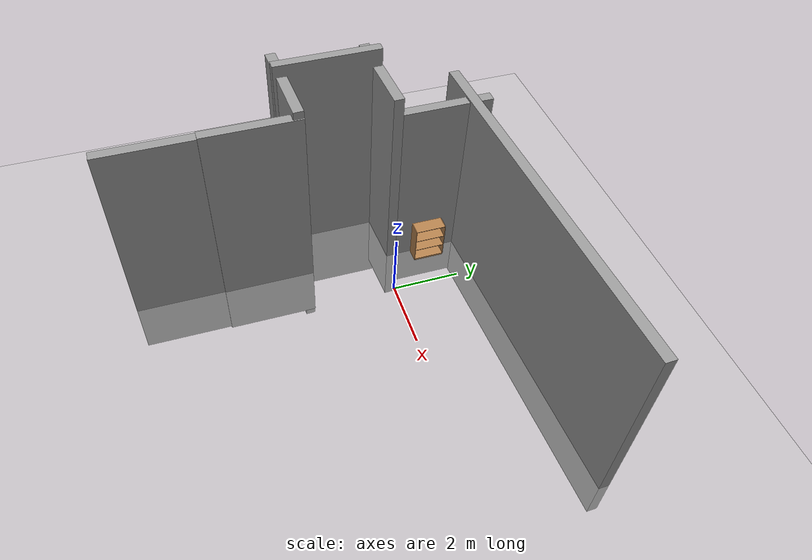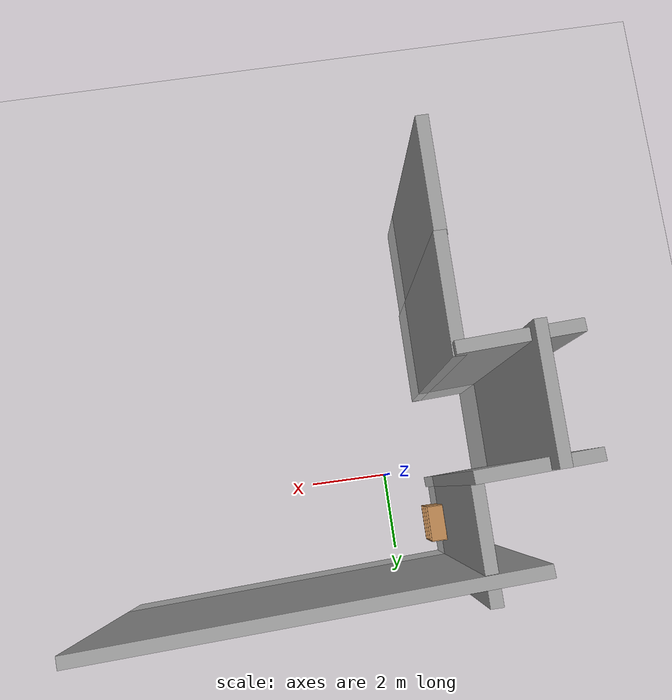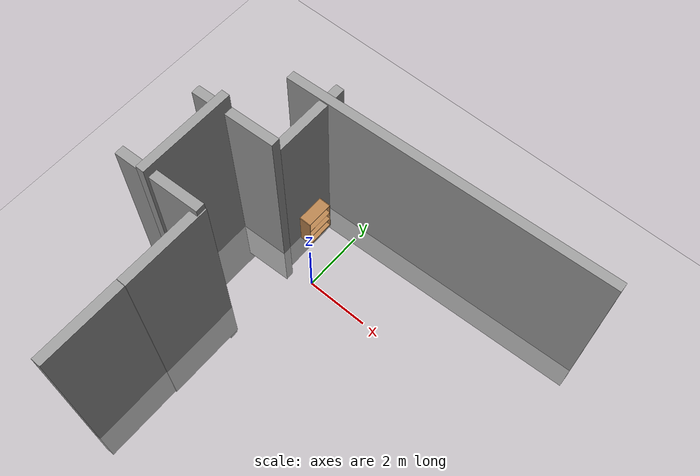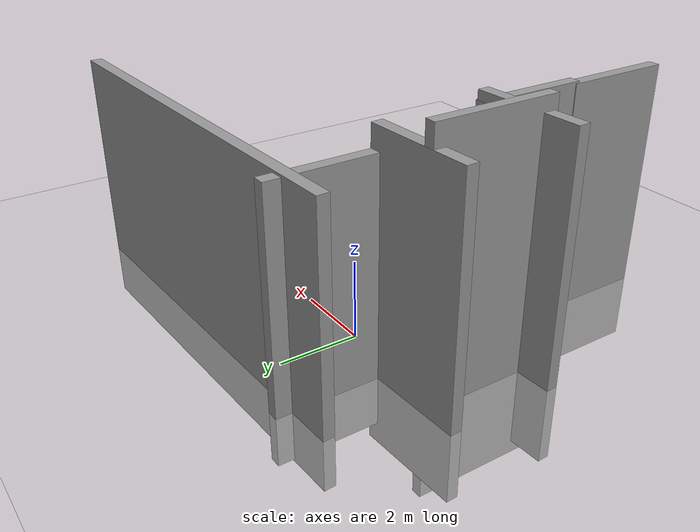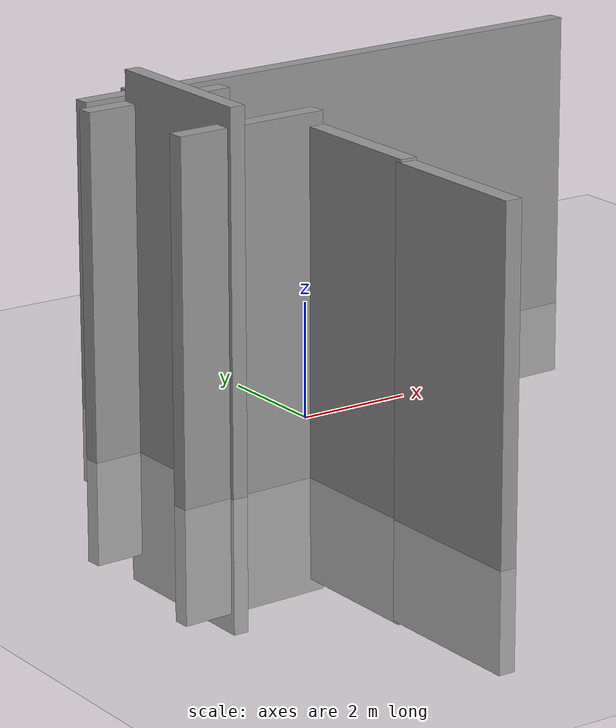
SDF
<sdf version="1.7">
 <world name="default">
  <light name="sun" type="directional">
   <pose>0 0 10 0 -0 0</pose>
   <diffuse>0.8 0.8 0.8 1</diffuse>
   <specular>0.2 0.2 0.2 1</specular>
   <attenuation>
    <range>1000</range>
    <constant>0.9</constant>
    <linear>0.01</linear>
    <quadratic>0.001</quadratic>
   </attenuation>
   <direction>-0.5 0.1 -0.9</direction>
   <spot><inner_angle>0</inner_angle><outer_angle>0</outer_angle><falloff>0</falloff></spot>
  </light>
  <model name="ground_plane">
   <static>1</static>
   <link name="link">
    <collision name="collision">
     <geometry><plane><normal>0 0 1</normal><size>100 100</size></plane></geometry>
     <surface>
      <contact><collide_bitmask>65535</collide_bitmask></contact>
      <friction><ode><mu>100</mu><mu2>50</mu2></ode></friction>
     </surface>
    </collision>
    <visual name="visual">
     <cast_shadows>0</cast_shadows>
     <geometry><plane><normal>0 0 1</normal><size>100 100</size></plane></geometry>
     <material>
      <script><uri>file://media/materials/scripts/gazebo.material</uri><name>Gazebo/Grey</name></script>
     </material>
    </visual>
   </link>
  </model>
  <gravity>0 0 -9.8</gravity>
  <magnetic_field>6e-06 2.3e-05 -4.2e-05</magnetic_field>
  <atmosphere type="adiabatic"/>
  <physics type="ode">
   <max_step_size>0.001</max_step_size>
   <real_time_factor>1</real_time_factor>
   <real_time_update_rate>1000</real_time_update_rate>
  </physics>
  <scene><ambient>0.4 0.4 0.4 1</ambient><background>0.7 0.7 0.7 1</background><shadows>1</shadows></scene>
  <spherical_coordinates>
   <surface_model>EARTH_WGS84</surface_model>
   <latitude_deg>0</latitude_deg>
   <longitude_deg>0</longitude_deg>
   <elevation>0</elevation>
   <heading_deg>0</heading_deg>
  </spherical_coordinates>
  <model name="unit_box">
   <pose>-3.02703 -1.08014 2.00263 0 -0 0</pose>
   <link name="link">
    <inertial>
     <mass>1</mass>
     <inertia>
      <ixx>0.166667</ixx>
      <ixy>0</ixy>
      <ixz>0</ixz>
      <iyy>0.166667</iyy>
      <iyz>0</iyz>
      <izz>0.166667</izz>
     </inertia>
    </inertial>
    <collision name="collision"><geometry><box><size>0.26292 2.99361 8.61227</size></box></geometry></collision>
    <visual name="visual">
     <geometry><box><size>0.26292 2.99361 8.61227</size></box></geometry>
     <material>
      <script><name>Gazebo/Grey</name><uri>file://media/materials/scripts/gazebo.material</uri></script>
     </material>
    </visual>
   </link>
  </model>
  <model name="unit_box_clone">
   <pose>-2.67466 0.299748 2.00263 0 0 -1.52953</pose>
   <link name="link">
    <inertial>
     <mass>1</mass>
     <inertia>
      <ixx>0.166667</ixx>
      <ixy>0</ixy>
      <ixz>0</ixz>
      <iyy>0.166667</iyy>
      <iyz>0</iyz>
      <izz>0.166667</izz>
     </inertia>
    </inertial>
    <collision name="collision"><geometry><box><size>0.288122 2.69837 7.58003</size></box></geometry></collision>
    <visual name="visual">
     <geometry><box><size>0.288122 2.69837 7.58003</size></box></geometry>
     <material>
      <script><name>Gazebo/Grey</name><uri>file://media/materials/scripts/gazebo.material</uri></script>
     </material>
    </visual>
   </link>
  </model>
  <model name="unit_box_clone_0">
   <pose>-1.4806 1.67999 2.00263 0 -0 0</pose>
   <link name="link">
    <inertial>
     <mass>1</mass>
     <inertia>
      <ixx>0.166667</ixx>
      <ixy>0</ixy>
      <ixz>0</ixz>
      <iyy>0.166667</iyy>
      <iyz>0</iyz>
      <izz>0.166667</izz>
     </inertia>
    </inertial>
    <collision name="collision"><geometry><box><size>0.288122 2.69837 6.51511</size></box></geometry></collision>
    <visual name="visual">
     <geometry><box><size>0.288122 2.69837 6.51511</size></box></geometry>
     <material>
      <script><name>Gazebo/Grey</name><uri>file://media/materials/scripts/gazebo.material</uri></script>
     </material>
    </visual>
   </link>
  </model>
  <model name="unit_box_clone_clone">
   <pose>2.35727 2.65735 2.00263 0 0 -1.52953</pose>
   <link name="link">
    <inertial>
     <mass>1</mass>
     <inertia>
      <ixx>0.166667</ixx>
      <ixy>0</ixy>
      <ixz>0</ixz>
      <iyy>0.166667</iyy>
      <iyz>0</iyz>
      <izz>0.166667</izz>
     </inertia>
    </inertial>
    <collision name="collision"><geometry><box><size>0.288122 10.2216 6.62771</size></box></geometry></collision>
    <visual name="visual">
     <geometry><box><size>0.288122 10.2216 6.62771</size></box></geometry>
     <material>
      <script><name>Gazebo/Grey</name><uri>file://media/materials/scripts/gazebo.material</uri></script>
     </material>
    </visual>
   </link>
  </model>
  <model name="unit_box_clone_clone_0">
   <pose>-2.68871 -2.33541 2.00263 0 0 -1.52953</pose>
   <link name="link">
    <inertial>
     <mass>1</mass>
     <inertia>
      <ixx>0.166667</ixx>
      <ixy>0</ixy>
      <ixz>0</ixz>
      <iyy>0.166667</iyy>
      <iyz>0</iyz>
      <izz>0.166667</izz>
     </inertia>
    </inertial>
    <collision name="collision"><geometry><box><size>0.288122 2.69837 7.9302</size></box></geometry></collision>
    <visual name="visual">
     <geometry><box><size>0.288122 2.69837 7.9302</size></box></geometry>
     <material>
      <script><name>Gazebo/Grey</name><uri>file://media/materials/scripts/gazebo.material</uri></script>
     </material>
    </visual>
   </link>
  </model>
  <model name="unit_box_clone_1">
   <pose>-1.4499 -3.48207 2.00263 0 -0 0</pose>
   <link name="link">
    <inertial>
     <mass>1</mass>
     <inertia>
      <ixx>0.166667</ixx>
      <ixy>0</ixy>
      <ixz>0</ixz>
      <iyy>0.166667</iyy>
      <iyz>0</iyz>
      <izz>0.166667</izz>
     </inertia>
    </inertial>
    <collision name="collision"><geometry><box><size>0.288122 2.69837 7.48159</size></box></geometry></collision>
    <visual name="visual">
     <geometry><box><size>0.288122 2.69837 7.48159</size></box></geometry>
     <material>
      <script><name>Gazebo/Grey</name><uri>file://media/materials/scripts/gazebo.material</uri></script>
     </material>
    </visual>
   </link>
  </model>
  <model name="unit_box_clone_1_clone">
   <pose>-1.47356 -6.07381 2.00263 0 -0 0</pose>
   <link name="link">
    <inertial>
     <mass>1</mass>
     <inertia>
      <ixx>0.166667</ixx>
      <ixy>0</ixy>
      <ixz>0</ixz>
      <iyy>0.166667</iyy>
      <iyz>0</iyz>
      <izz>0.166667</izz>
     </inertia>
    </inertial>
    <collision name="collision"><geometry><box><size>0.288122 2.69837 7.39287</size></box></geometry></collision>
    <visual name="visual">
     <geometry><box><size>0.288122 2.69837 7.39287</size></box></geometry>
     <material>
      <script><name>Gazebo/Grey</name><uri>file://media/materials/scripts/gazebo.material</uri></script>
     </material>
    </visual>
   </link>
  </model>
  <model name="bookshelf">
   <static>1</static>
   <link name="link">
    <inertial><mass>1</mass></inertial>
    <collision name="back">
     <pose>0 0.005 0.6 0 -0 0</pose>
     <geometry><box><size>0.9 0.01 1.2</size></box></geometry>
    </collision>
    <visual name="visual1">
     <pose>0 0.005 0.6 0 -0 0</pose>
     <geometry><box><size>0.9 0.01 1.2</size></box></geometry>
     <material>
      <script><uri>file://media/materials/scripts/gazebo.material</uri><name>Gazebo/Wood</name></script>
     </material>
    </visual>
    <collision name="left_side">
     <pose>0.45 -0.195 0.6 0 -0 0</pose>
     <geometry><box><size>0.02 0.4 1.2</size></box></geometry>
    </collision>
    <visual name="visual2">
     <pose>0.45 -0.195 0.6 0 -0 0</pose>
     <geometry><box><size>0.02 0.4 1.2</size></box></geometry>
     <material>
      <script><uri>file://media/materials/scripts/gazebo.material</uri><name>Gazebo/Wood</name></script>
     </material>
    </visual>
    <collision name="right_side">
     <pose>-0.45 -0.195 0.6 0 -0 0</pose>
     <geometry><box><size>0.02 0.4 1.2</size></box></geometry>
    </collision>
    <visual name="visual3">
     <pose>-0.45 -0.195 0.6 0 -0 0</pose>
     <geometry><box><size>0.02 0.4 1.2</size></box></geometry>
     <material>
      <script><uri>file://media/materials/scripts/gazebo.material</uri><name>Gazebo/Wood</name></script>
     </material>
    </visual>
    <collision name="bottom">
     <pose>0 -0.195 0.03 0 -0 0</pose>
     <geometry><box><size>0.88 0.4 0.06</size></box></geometry>
    </collision>
    <visual name="visual4">
     <pose>0 -0.195 0.03 0 -0 0</pose>
     <geometry><box><size>0.88 0.4 0.06</size></box></geometry>
     <material>
      <script><uri>file://media/materials/scripts/gazebo.material</uri><name>Gazebo/Wood</name></script>
     </material>
    </visual>
    <collision name="top">
     <pose>0 -0.195 1.19 0 -0 0</pose>
     <geometry><box><size>0.88 0.4 0.02</size></box></geometry>
    </collision>
    <visual name="visual5">
     <pose>0 -0.195 1.19 0 -0 0</pose>
     <geometry><box><size>0.88 0.4 0.02</size></box></geometry>
     <material>
      <script><uri>file://media/materials/scripts/gazebo.material</uri><name>Gazebo/Wood</name></script>
     </material>
    </visual>
    <collision name="low_shelf">
     <pose>0 -0.195 0.43 0 -0 0</pose>
     <geometry><box><size>0.88 0.4 0.02</size></box></geometry>
    </collision>
    <visual name="visual6">
     <pose>0 -0.195 0.43 0 -0 0</pose>
     <geometry><box><size>0.88 0.4 0.02</size></box></geometry>
     <material>
      <script><uri>file://media/materials/scripts/gazebo.material</uri><name>Gazebo/Wood</name></script>
     </material>
    </visual>
    <collision name="high_shelf">
     <pose>0 -0.195 0.8 0 -0 0</pose>
     <geometry><box><size>0.88 0.4 0.02</size></box></geometry>
    </collision>
    <visual name="visual7">
     <pose>0 -0.195 0.8 0 -0 0</pose>
     <geometry><box><size>0.88 0.4 0.02</size></box></geometry>
     <material>
      <script><uri>file://media/materials/scripts/gazebo.material</uri><name>Gazebo/Wood</name></script>
     </material>
    </visual>
   </link>
   <pose>-1.29124 1.42983 0 0 -0 1.57194</pose>
  </model>
 </world>
</sdf>
